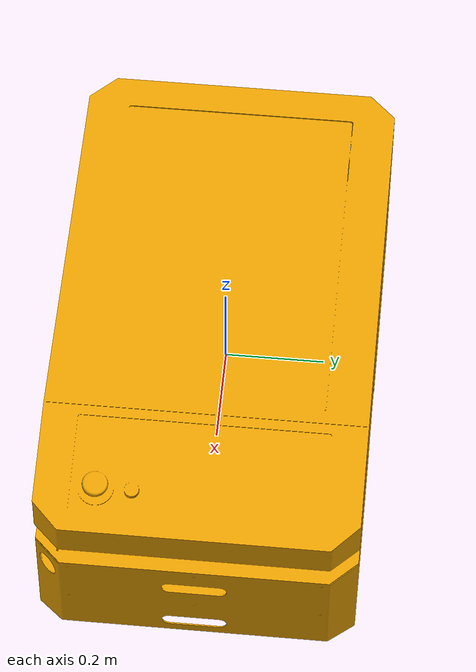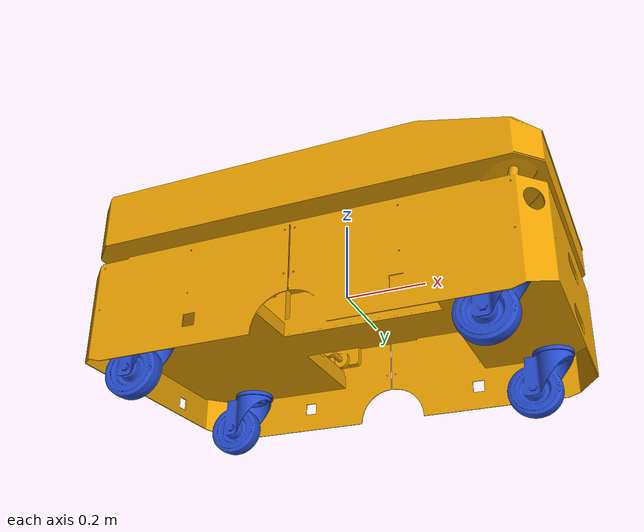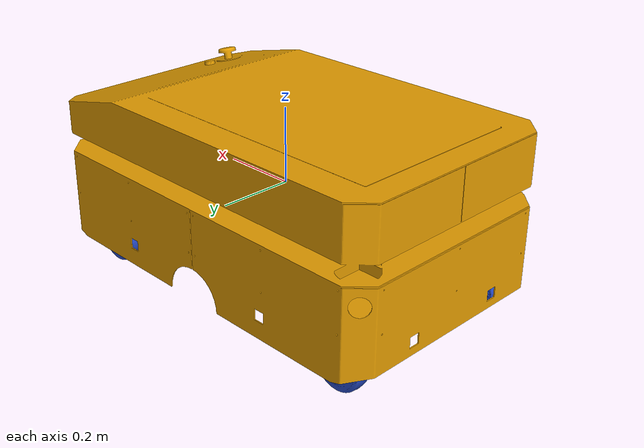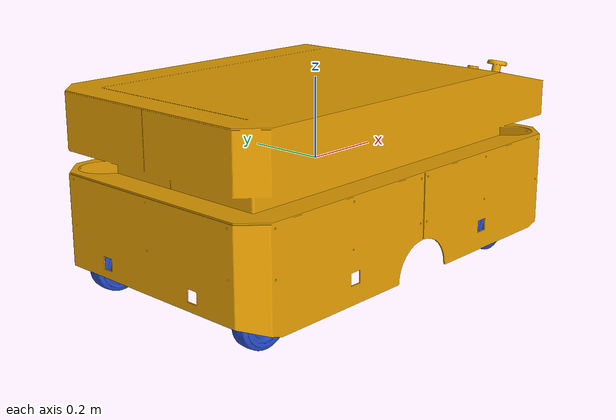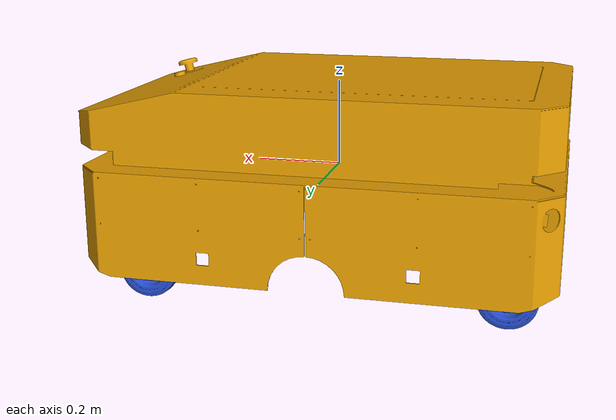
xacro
<?xml version="1.0"?>
<robot name="robot" xmlns:xacro="http://www.ros.org/wiki/xacro">

    <!-- ==== BASE LINK ==== -->
    <link name="base_link">
        <pose>0 0 0 0 0 0</pose>
        <visual>
            <geometry>
                <mesh filename="package://robot_description/meshes/chassis.stl" scale="1 1 1" />
            </geometry>
            <origin xyz="0 0 0" rpy="0 0 0"/>
        </visual>
        <collision>
            <geometry>
                <mesh filename="package://robot_description/meshes/chassis.stl" scale="1 1 1" />
            </geometry>
            <origin xyz="0 0 0" rpy="0 0 0"/>
        </collision>
        <inertial>
            <mass value="2"/>
            <inertia ixx="0.0395416666667" ixy="0" ixz="0" iyy="0.106208333333" iyz="0" izz="0.106208333333"/>
        </inertial>

        <!-- ==== FRONT LEFT CASTER WHEEL ==== -->
        <visual>
            <geometry>
                <mesh filename="package://robot_description/meshes/caster_wheel.stl" scale="1 1 1" />
             </geometry>
            <origin xyz="0.410295 0.24 -0.2" rpy="0 0 0"/>
            <material name="blue"/>
        </visual>
        <collision>
            <geometry>
                <mesh filename="package://robot_description/meshes/caster_wheel.stl" scale="1 1 1" />
            </geometry>
            <surface>
                <friction>
                    <ode>
                        <mu>0</mu>
                        <mu2>0</mu2>
                        <slip1>1.0</slip1>
                        <slip2>1.0</slip2>
                    </ode>
                </friction>
            </surface>
            <origin xyz="0.410295 0.24 -0.2" rpy="0 0 0"/>
        </collision>

        <!-- ==== FRONT RIGHT CASTER WHEEL ==== -->
        <visual>
            <geometry>
                <mesh filename="package://robot_description/meshes/caster_wheel.stl"  scale="1 1 1" />
             </geometry>
            <origin xyz="0.410295 -0.24 -0.2" rpy="0 0 0"/>
            <material name="blue"/>
        </visual>
        <collision>
            <geometry>
                <mesh filename="package://robot_description/meshes/caster_wheel.stl"  scale="1 1 1" />
            </geometry>
            <surface>
                <friction>
                    <ode>
                        <mu>0</mu>
                        <mu2>0</mu2>
                        <slip1>1.0</slip1>
                        <slip2>1.0</slip2>
                    </ode>
                </friction>
            </surface>
            <origin xyz="0.410295 -0.24 -0.2" rpy="0 0 0"/>
        </collision>

        <!-- ==== BACK LEFT CASTER WHEEL ==== -->
        <visual>
            <geometry>
                <mesh filename="package://robot_description/meshes/caster_wheel.stl"  scale="1 1 1" />
             </geometry>
            <origin xyz="-0.410295 0.24 -0.2" rpy="0 0 0"/>
            <material name="blue"/>
        </visual>
        <collision>
            <geometry>
                <mesh filename="package://robot_description/meshes/caster_wheel.stl"  scale="1 1 1" />
            </geometry>
            <surface>
                <friction>
                    <ode>
                        <mu>0</mu>
                        <mu2>0</mu2>
                        <slip1>1.0</slip1>
                        <slip2>1.0</slip2>
                    </ode>
                </friction>
            </surface>
            <origin xyz="-0.410295 0.24 -0.2" rpy="0 0 0"/>
        </collision>

        <!-- ==== BACK RIGHT CASTER WHEEL ==== -->
        <visual>
            <geometry>
                <mesh filename="package://robot_description/meshes/caster_wheel.stl"  scale="1 1 1" />
             </geometry>
            <origin xyz="-0.410295 -0.24 -0.2" rpy="0 0 0"/>
            <material name="blue"/>
        </visual>
        <collision>
            <geometry>
                <mesh filename="package://robot_description/meshes/caster_wheel.stl"  scale="1 1 1" />
            </geometry>
            <surface>
                <friction>
                    <ode>
                        <mu>0</mu>
                        <mu2>0</mu2>
                        <slip1>1.0</slip1>
                        <slip2>1.0</slip2>
                    </ode>
                </friction>
            </surface>
            <origin xyz="-0.410295 -0.24 -0.2" rpy="0 0 0"/>
        </collision>
    </link>

</robot>
